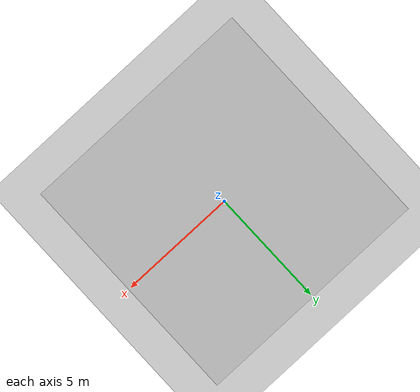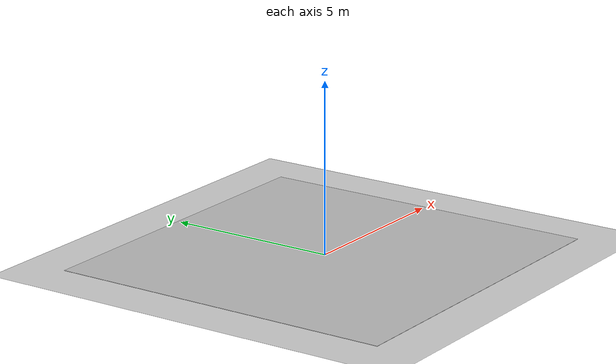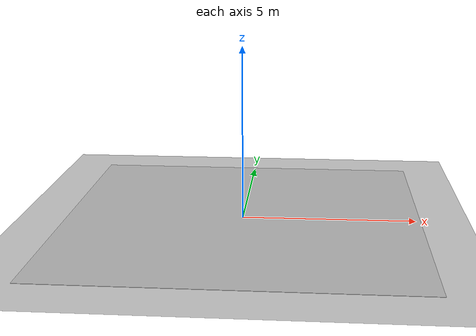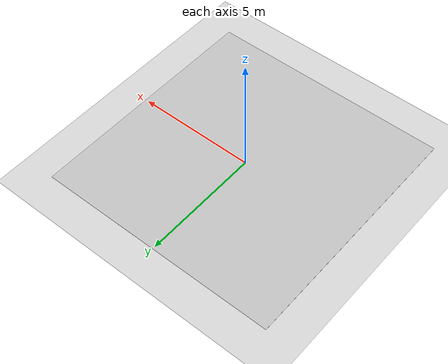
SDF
<?xml version="1.0" ?>
<sdf version="1.5">
  <world name="default">
    <!-- A global light source -->
    <include>
      <uri>model://sun</uri>
    </include>
    <!-- A ground plane -->
    <include>
      <uri>model://ground_plane</uri>
    </include>
    <!-- The lawn -->
    <include>
      <uri>model://lawn0</uri>
    </include>
  </world>
</sdf>

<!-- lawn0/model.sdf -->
<sdf version="1.5">
  <model name="lawn">
    <static>true</static>
    <link name="garden">
      <pose>0 0 0.01 0 0 0</pose>
      <collision name="collision">
        <geometry>
          <plane>
            <normal>0 0 1</normal>
            <size>10.24 10.24</size>
          </plane>
        </geometry>
        <surface>
          <friction>
            <ode>
              <mu>100</mu>
              <mu2>50</mu2>
            </ode>
          </friction>
        </surface>
      </collision>
      <visual name="lawn_visual">
        <cast_shadows>false</cast_shadows>
        <geometry>
          <plane>
            <normal>0 0 1</normal>
            <size>10.24 10.24</size>
          </plane>
        </geometry>
      </visual>

    </link>

  </model>
</sdf>
